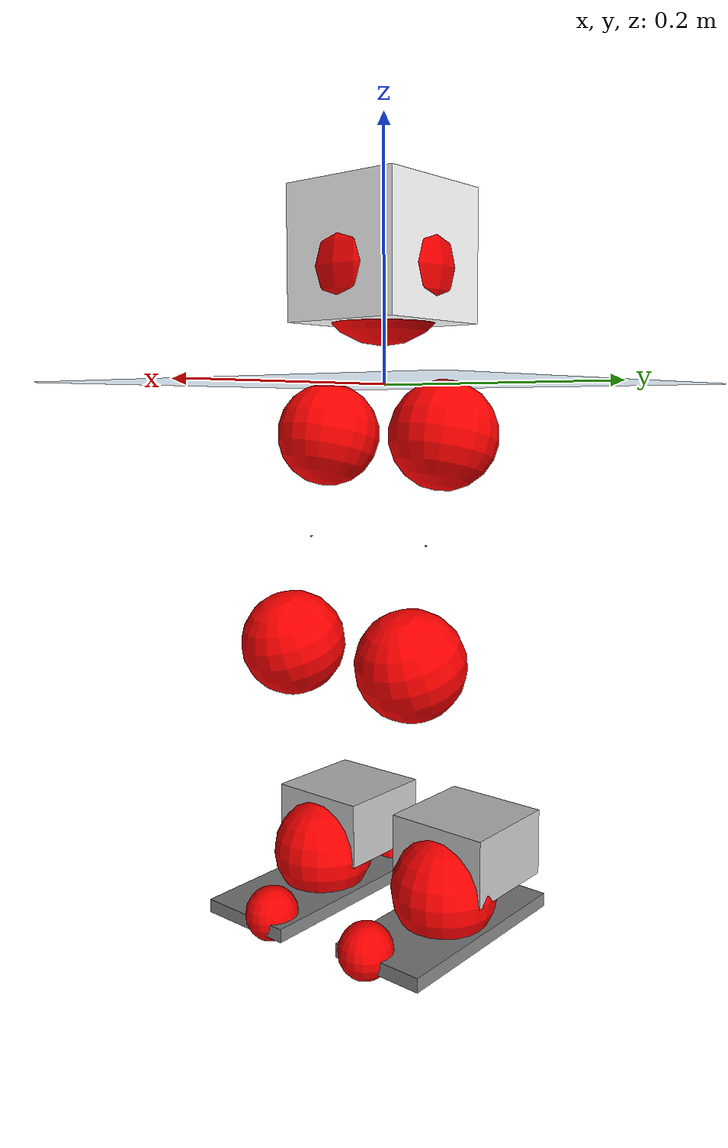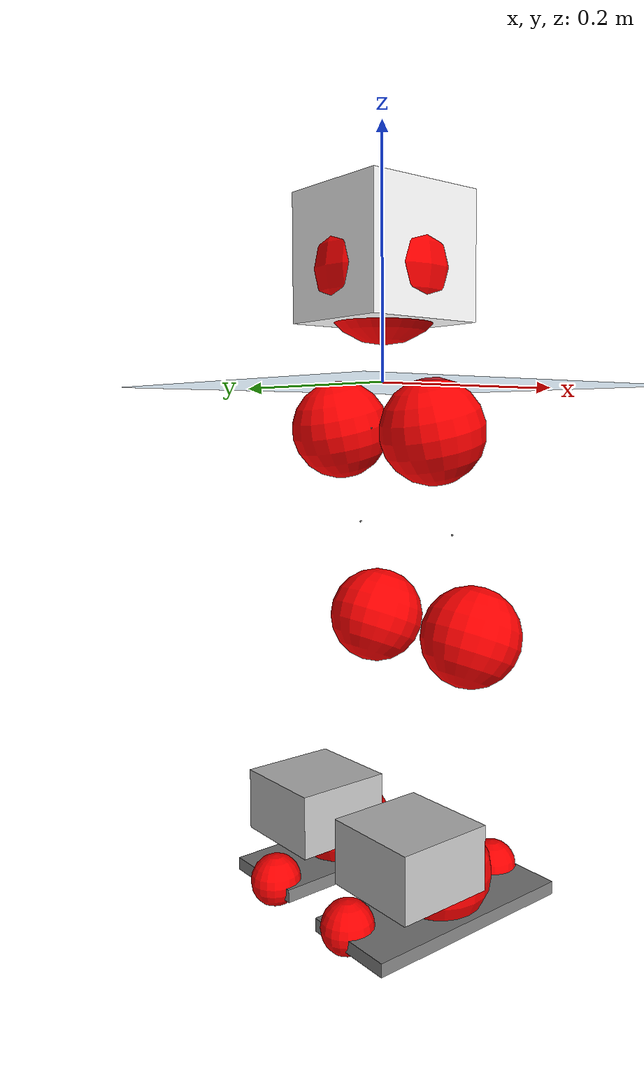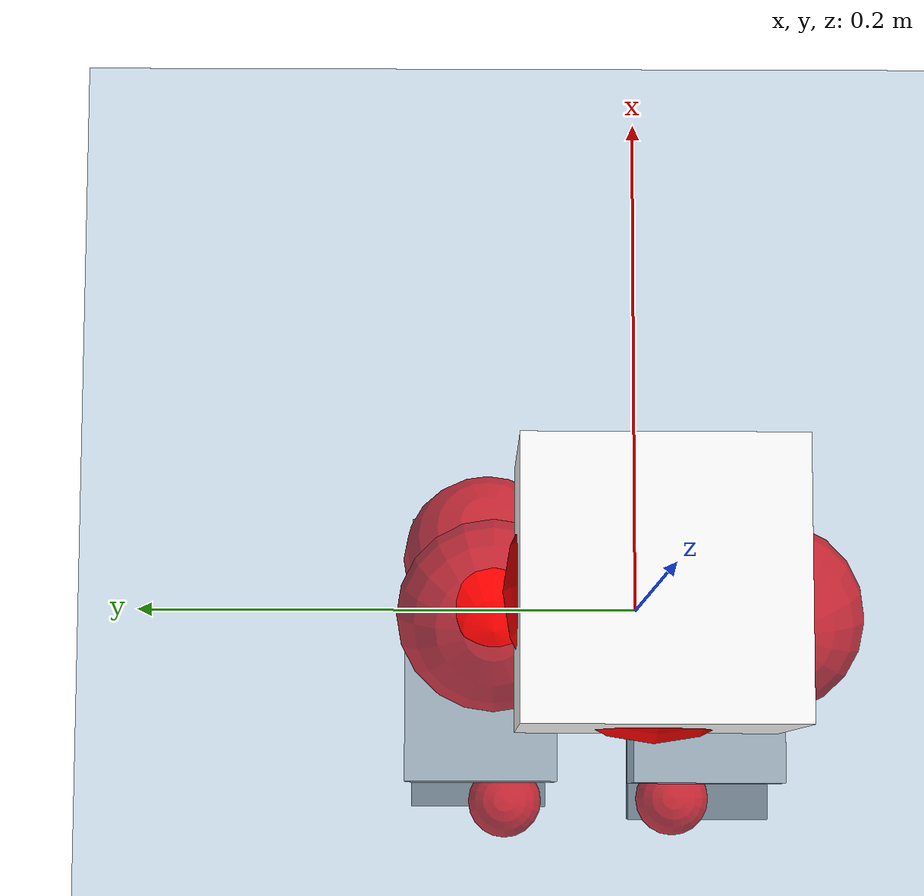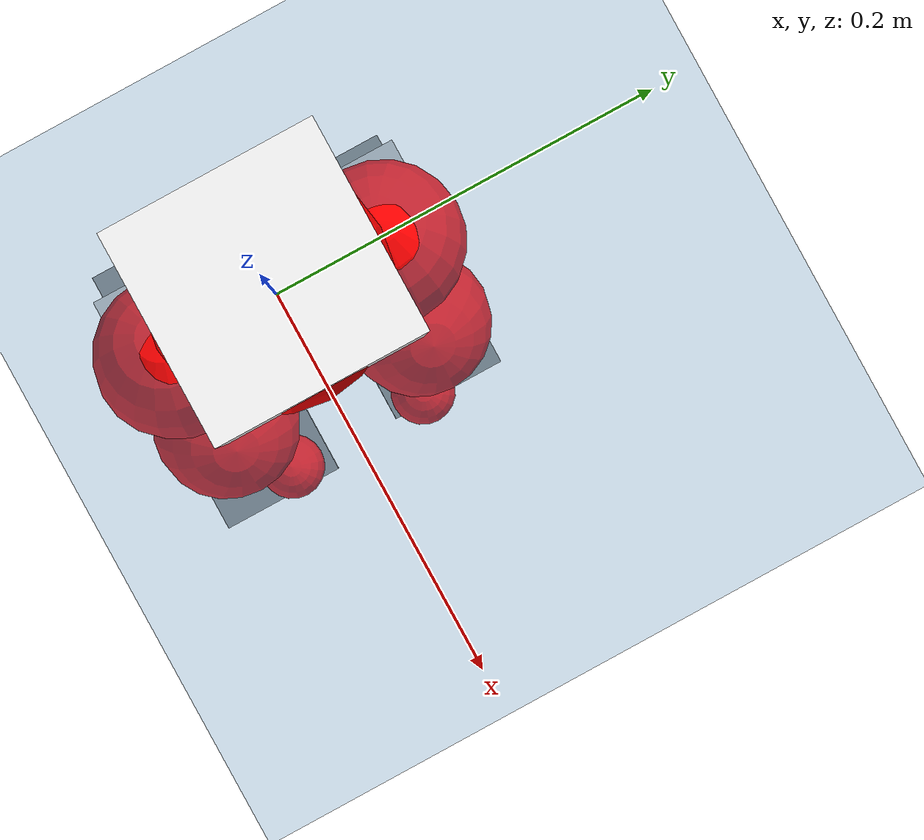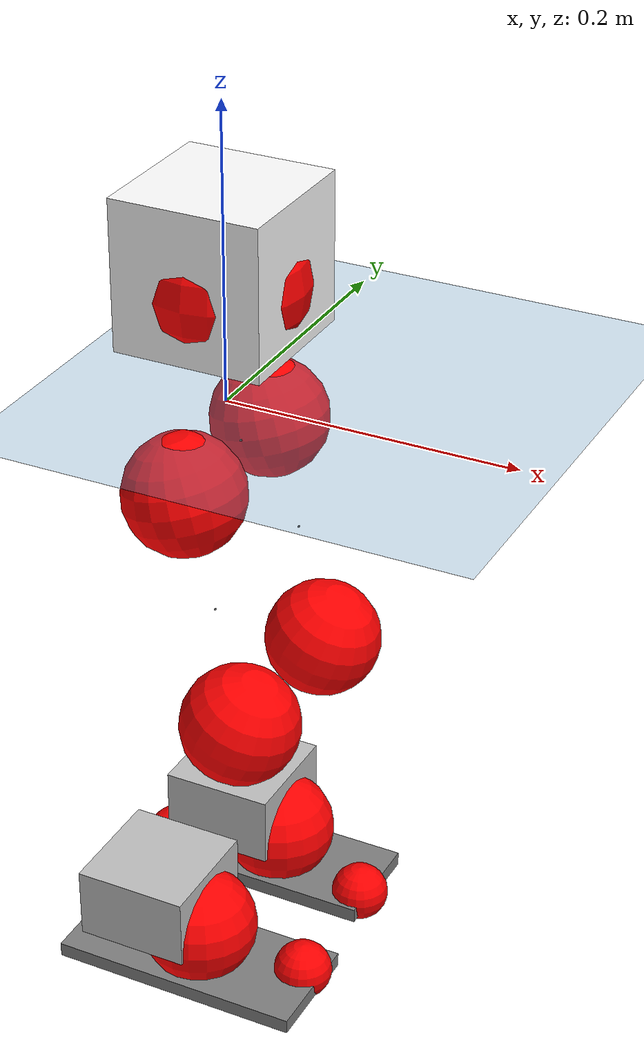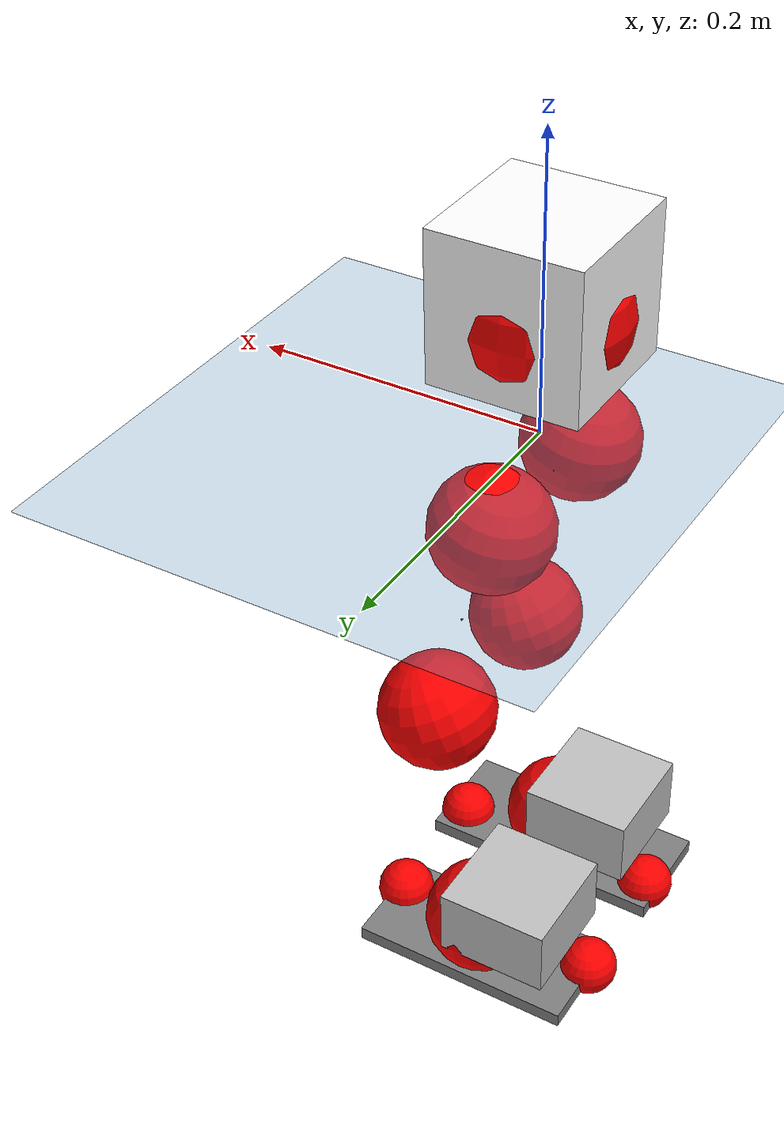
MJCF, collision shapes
<mujoco model="pi_12dof_release_v1">
  <compiler angle="radian" assetdir="assets" balanceinertia="true" inertiafromgeom="false"/>

  <option timestep="0.005" density="1.2" viscosity="2e-05"/>

  <size nkey="1"/>

  <visual>
    <quality shadowsize="8192"/>
    <map shadowclip="0.5"/>
  </visual>

  <default>
    <default class="/">
      <joint armature="0.01" damping="0.01" frictionloss="0.01"/>
      <geom contype="0" conaffinity="0" group="1" solref="-1000 -80"/>
      <site size="0.01 0.005 0.005" group="5"/>
      <general forcelimited="true" biastype="affine" gainprm="20" biasprm="0 -20 -0.5"/>
      <default class="foot">
        <geom size="0.0845 0.036 0.005" type="box" condim="6" group="4" priority="1" friction="0.9 0.2 0.2" solimp="0.015 1 0.005"/>
      </default>
      <default class="reward_collision_sphere">
        <geom group="5" rgba="1 0 0 1"/>
      </default>
    </default>
  </default>

  <asset>
    <texture type="skybox" colorspace="auto" name="//unnamed_texture_0" builtin="gradient" rgb1="0.95 0.95 0.95" rgb2="0.95 0.95 0.95" width="100" height="600"/>
    <texture type="2d" colorspace="auto" name="texplane" builtin="checker" rgb1="0.345 0.575 0.748" rgb2="0.345 0.575 0.748" markrgb="1 1 1" width="512" height="512"/>
    <material name="MatPlane" class="/" texture="texplane" texuniform="true" texrepeat="2 2" specular="0.9"/>
    <mesh name="baselink_1" class="/" file="baselink_1.STL"/>
    <mesh name="r_hip_pitch_link" class="/" file="r_hip_pitch_link.STL"/>
    <mesh name="r_hip_roll_link" class="/" file="r_hip_roll_link.STL"/>
    <mesh name="r_thigh_link" class="/" file="r_thigh_link.STL"/>
    <mesh name="r_calf_link" class="/" file="r_calf_link.STL"/>
    <mesh name="r_ankle_pitch_link" class="/" file="r_ankle_pitch_link.STL"/>
    <mesh name="r_ankle_roll_link" class="/" file="r_ankle_roll_link.STL"/>
    <mesh name="l_hip_pitch_link" class="/" file="l_hip_pitch_link.STL"/>
    <mesh name="l_hip_roll_link" class="/" file="l_hip_roll_link.STL"/>
    <mesh name="l_thigh_link" class="/" file="l_thigh_link.STL"/>
    <mesh name="l_calf_link" class="/" file="l_calf_link.STL"/>
    <mesh name="l_ankle_pitch_link" class="/" file="l_ankle_pitch_link.STL"/>
    <mesh name="l_ankle_roll_link" class="/" file="l_ankle_roll_link.STL"/>
  </asset>

  <worldbody>
    <geom name="floor" class="/" size="100 100 0.125" type="plane" group="0" material="MatPlane"/>
    <light name="toplight_shadow" class="/" pos="0 0 5" dir="0.0990148 0.0990148 -0.990148" type="directional" ambient="0.04 0.04 0.04" diffuse="0.55 0.55 0.55" specular="0.12 0.12 0.12"/>
    <light name="toplight_fill" class="/" pos="0 0 5" dir="0.0990148 0.0990148 -0.990148" type="directional" castshadow="false" ambient="0.04 0.04 0.04" diffuse="0.3 0.3 0.3" specular="0.08 0.08 0.08"/>
    <body name="trunk" pos="0.000173588 -0.000900032 0.00104849" quat="1 4.40137e-05 0.000438916 -0.000151494">
      <inertial pos="0.00248152 -0.0030158 0.0493972" quat="0.695289 0.00948444 0.0089145 0.718612" mass="2.19726" diaginertia="0.0160183 0.00173133 0.00982957"/>
      <joint name="//unnamed_joint_0" type="free"/>
      <geom name="//unnamed_geom_1" class="/" type="mesh" density="0" rgba="1 1 1 1" mesh="baselink_1"/>
      <geom name="//unnamed_geom_2" class="/" size="0.0505256 0.0505256 0.0505256" pos="0 0 0.0951984" type="box" rgba="1 1 1 1"/>
      <geom name="//unnamed_geom_3" class="reward_collision_sphere" size="0.0555782" pos="0 0 0.0832986"/>
      <site name="imu" class="/" pos="-0.00168884 0.00274336 0.00272642" size="0.0101051"/>
      <camera name="track" class="/" pos="0 -1.44705 0" quat="0.707107 0.707107 0 0" mode="trackcom"/>
      <camera name="ego_camera" class="/" pos="0.0838522 0 0.214196" quat="-0.5 -0.5 0.5 0.5"/>
      <body name="r_hip_pitch_link" pos="-0.00123631 -0.017098 -0.0395188" quat="0.992213 0.000312121 -0.124552 2.07169e-05">
        <inertial pos="0.00124187 -0.0428405 0.000755285" quat="-0.0172913 0.696942 -0.0309775 0.716249" mass="0.378812" diaginertia="0.000186527 1.93668e-05 0.000195119"/>
        <joint name="r_hip_pitch_joint" class="/" pos="0 0 0" axis="0.00214508 -0.999992 -0.00350877" range="-1.73456 1.25191" armature="0.00985404" damping="0.0254546" frictionloss="0.0113373"/>
        <geom name="//unnamed_geom_4" class="/" type="mesh" density="0" rgba="0.75294 0.75294 0.75294 1" mesh="r_hip_pitch_link"/>
        <geom name="//unnamed_geom_5" class="/" size="0.000505256 0.000505256 0.000505256" type="box" rgba="0.75294 0.75294 0.75294 1"/>
        <body name="r_hip_roll_link" pos="0.00179923 -0.0395775 -0.00029859" quat="0.999999 0.000180309 -0.000649982 -0.00109103">
          <inertial pos="-0.00188289 0.00202183 -0.0711762" quat="0.707044 -0.0755094 -0.0832022 0.698187" mass="0.398993" diaginertia="0.000565326 5.66666e-05 0.000305174"/>
          <joint name="r_hip_roll_joint" class="/" pos="0 0 0" axis="-1 0.000692704 -0.000100934" stiffness="0.000544188" range="-0.115924 0.499356" armature="0.0109987" damping="0.0187918" frictionloss="0.00991995"/>
          <geom name="//unnamed_geom_6" class="/" type="mesh" density="0" rgba="0.75294 0.75294 0.75294 1" mesh="r_hip_roll_link"/>
          <geom name="//unnamed_geom_7" class="/" size="0.000505256 0.000505256 0.000505256" type="box" rgba="0.75294 0.75294 0.75294 1"/>
          <geom name="//unnamed_geom_8" class="reward_collision_sphere" size="0.0404205"/>
          <body name="r_thigh_link" pos="6.56575e-05 -9.4364e-05 -0.0815673" quat="1 -1.38209e-05 -8.3081e-06 -1.78664e-07">
            <inertial pos="-0.00170194 -9.32875e-05 -0.0583847" quat="0.737568 0.675256 -0.00112118 -0.00458537" mass="0.113935" diaginertia="0.000216531 1.91782e-05 0.000136517"/>
            <joint name="r_thigh_joint" class="/" pos="0 0 0" axis="-0.00788131 -0.000303236 -0.999969" range="-0.352286 0.542901" armature="0.011133" damping="0" frictionloss="0.0113745"/>
            <geom name="//unnamed_geom_9" class="/" type="mesh" density="0" rgba="0.75294 0.75294 0.75294 1" mesh="r_thigh_link"/>
            <geom name="//unnamed_geom_10" class="/" size="0.000505256 0.000505256 0.000505256" type="box" rgba="0.75294 0.75294 0.75294 1"/>
            <body name="r_calf_link" pos="-0.00252489 -0.00280811 -0.0833772" quat="0.947755 0.000166585 0.318999 0.000106115">
              <inertial pos="0.000494074 -0.00156204 -0.0823929" quat="0.999962 0.00827556 -0.000136516 0.00283993" mass="0.848209" diaginertia="0.00605727 0.000693346 0.000411145"/>
              <joint name="r_calf_joint" class="/" pos="0 0 0" axis="0.0143223 -0.999897 0.000600738" stiffness="0.00148711" range="-1.6489 0.656562" armature="0.0101434" damping="0.0104109" frictionloss="0.0112951"/>
              <geom name="//unnamed_geom_11" class="/" type="mesh" density="0" rgba="0.75294 0.75294 0.75294 1" mesh="r_calf_link"/>
              <geom name="//unnamed_geom_12" class="/" size="0.000505256 0.000505256 0.000505256" type="box" rgba="0.75294 0.75294 0.75294 1"/>
              <geom name="//unnamed_geom_13" class="reward_collision_sphere" size="0.0404205"/>
              <body name="r_ankle_pitch_link" pos="0.00105271 -0.00166457 -0.168801" quat="0.98006 1.87456e-05 -0.198701 1.70346e-05">
                <inertial pos="0.00515005 0.00203721 0.00214862" quat="-0.000197145 0.706655 0.00186174 0.707556" mass="0.178633" diaginertia="0.000529866 4.38075e-05 0.000284796"/>
                <joint name="r_ankle_pitch_joint" class="/" pos="0 0 0" axis="0.00337782 -0.999982 0.00497643" range="-1.31686 0.452936" armature="0.0110283" damping="0.011981" frictionloss="0.0112366"/>
                <geom name="//unnamed_geom_14" class="/" type="mesh" density="0" rgba="0.75294 0.75294 0.75294 1" mesh="r_ankle_pitch_link"/>
                <geom name="//unnamed_geom_15" class="/" size="0.03941 0.0404205 0.0252628" type="box" rgba="0.75294 0.75294 0.75294 1"/>
                <body name="r_ankle_roll_link" pos="0.0867601 6.4041e-05 0.00235611" quat="1 -0.000351654 -7.60562e-06 7.05683e-05">
                  <inertial pos="-0.0273467 0.000917961 -0.01687" quat="0.559902 0.429017 0.432527 0.561582" mass="0.552683" diaginertia="0.00206224 0.000214161 0.000693776"/>
                  <joint name="r_ankle_roll_joint" class="/" pos="0 0 0" axis="-0.999927 0.00393939 -0.0114307" stiffness="0.00405304" range="-0.0986494 0.186811" armature="0.0098443" damping="0.0124333" frictionloss="0.00957763"/>
                  <geom name="//unnamed_geom_16" class="/" type="mesh" density="0" rgba="0.75294 0.75294 0.75294 1" mesh="r_ankle_roll_link"/>
                  <geom name="//unnamed_geom_17" class="/" type="mesh" rgba="0.75294 0.75294 0.75294 1" mesh="r_ankle_roll_link"/>
                  <geom name="right_foot" class="foot" size="0.0887476 0.038915 0.0050619" pos="-0.0570195 0 -0.0523591"/>
                  <geom name="//unnamed_geom_19" class="reward_collision_sphere" size="0.0404205" pos="-0.0559015 0 -0.0237996"/>
                  <geom name="//unnamed_geom_20" class="reward_collision_sphere" size="0.0202102" pos="0.0167704 0.0144705 -0.0475992"/>
                  <geom name="//unnamed_geom_21" class="reward_collision_sphere" size="0.0202102" pos="-0.134164 0.0144705 -0.0475992"/>
                  <site name="right_foot" class="foot" pos="-0.0570195 0 -0.0523591" size="0.0101051"/>
                </body>
              </body>
            </body>
          </body>
        </body>
      </body>
      <body name="l_hip_pitch_link" pos="0.00121203 0.0167432 -0.0368885" quat="0.992248 -0.000183179 -0.124274 -0.000106056">
        <inertial pos="0.000203865 0.0399846 0.000413416" quat="-0.0404415 0.706857 0.0331774 0.70542" mass="0.393043" diaginertia="0.0002284 2.11205e-05 0.000243467"/>
        <joint name="l_hip_pitch_joint" class="/" pos="0 0 0" axis="-0.00398209 0.999992 -0.000487242" stiffness="0.00581707" range="-1.24535 1.79563" armature="0.00972109" damping="0.0154573" frictionloss="0.0102755"/>
        <geom name="//unnamed_geom_22" class="/" type="mesh" density="0" rgba="0.75294 0.75294 0.75294 1" mesh="l_hip_pitch_link"/>
        <geom name="//unnamed_geom_23" class="/" size="0.000505256 0.000505256 0.000505256" type="box" rgba="0.75294 0.75294 0.75294 1"/>
        <body name="l_hip_roll_link" pos="-0.000662387 0.0408434 -0.00138354" quat="0.999999 -0.000676224 0.000950454 0.000406933">
          <inertial pos="-0.00312133 0.00253899 -0.0733918" quat="0.693985 -0.077098 -0.0768761 0.71171" mass="0.38856" diaginertia="0.000582178 5.52556e-05 0.000315524"/>
          <joint name="l_hip_roll_joint" class="/" pos="0 0 0" axis="-0.999995 0.000440604 -0.00324932" range="-0.502351 0.0999992" armature="0.0113969" damping="0.00804104" frictionloss="0.0100302"/>
          <geom name="//unnamed_geom_24" class="/" type="mesh" density="0" rgba="0.75294 0.75294 0.75294 1" mesh="l_hip_roll_link"/>
          <geom name="//unnamed_geom_25" class="/" size="0.000505256 0.000505256 0.000505256" type="box" rgba="0.75294 0.75294 0.75294 1"/>
          <geom name="//unnamed_geom_26" class="reward_collision_sphere" size="0.0404205"/>
          <body name="l_thigh_link" pos="0.00131267 0.000325229 -0.0814164" quat="1 4.73264e-07 -1.13099e-06 6.2943e-07">
            <inertial pos="0.000303504 0.000387001 -0.0561165" quat="0.673566 0.739126 -0.00088819 0.000872098" mass="0.117287" diaginertia="0.000213986 1.837e-05 0.000134777"/>
            <joint name="l_thigh_joint" class="/" pos="0 0 0" axis="-0.000241049 -0.00238771 -0.999997" range="-0.619742 0.282887" armature="0.0100343" damping="0" frictionloss="0.00958736"/>
            <geom name="//unnamed_geom_27" class="/" type="mesh" density="0" rgba="0.75294 0.75294 0.75294 1" mesh="l_thigh_link"/>
            <geom name="//unnamed_geom_28" class="/" size="0.000505256 0.000505256 0.000505256" type="box" rgba="0.75294 0.75294 0.75294 1"/>
            <body name="l_calf_link" pos="-0.0026481 0.00101828 -0.0852008" quat="0.947938 -0.000906652 0.318454 0.000270883">
              <inertial pos="0.000750437 0.00337381 -0.0816252" quat="0.999978 0.00463998 0.0002814 0.00464967" mass="0.841605" diaginertia="0.00616942 0.000686576 0.000431204"/>
              <joint name="l_calf_joint" class="/" pos="0 0 0" axis="-0.000907385 1 -0.000415588" range="-0.609146 1.67117" armature="0.0103715" damping="0.0057747" frictionloss="0.00957595"/>
              <geom name="//unnamed_geom_29" class="/" type="mesh" density="0" rgba="0.75294 0.75294 0.75294 1" mesh="l_calf_link"/>
              <geom name="//unnamed_geom_30" class="/" size="0.000505256 0.000505256 0.000505256" type="box" rgba="0.75294 0.75294 0.75294 1"/>
              <geom name="//unnamed_geom_31" class="reward_collision_sphere" size="0.0404205"/>
              <body name="l_ankle_pitch_link" pos="-0.000792578 0.00270799 -0.165474" quat="0.980008 -0.000147165 -0.198957 -0.000250986">
                <inertial pos="0.00501572 -0.00221879 0.000357222" quat="-0.0026808 0.706546 0.00297209 0.707656" mass="0.177153" diaginertia="0.000529846 4.40608e-05 0.000279835"/>
                <joint name="l_ankle_pitch_joint" class="/" pos="0 0 0" axis="0.00217787 0.999997 -0.00128462" stiffness="0.00975973" range="-0.49587 1.30155" armature="0.00903513" damping="0.0186021" frictionloss="0.00981697"/>
                <geom name="//unnamed_geom_32" class="/" type="mesh" density="0" rgba="0.75294 0.75294 0.75294 1" mesh="l_ankle_pitch_link"/>
                <geom name="//unnamed_geom_33" class="/" size="0.03941 0.0404205 0.0252628" type="box" rgba="0.75294 0.75294 0.75294 1"/>
                <body name="l_ankle_roll_link" pos="0.0849175 0.000954087 -0.000218049" quat="1 7.02979e-05 -0.000128634 7.29871e-05">
                  <inertial pos="-0.0277335 -0.000187511 -0.0177326" quat="0.559534 0.430431 0.434354 0.559453" mass="0.54247" diaginertia="0.00195563 0.000204227 0.000674331"/>
                  <joint name="l_ankle_roll_joint" class="/" pos="0 0 0" axis="-0.999999 0.000675885 0.00138794" range="-0.10235 0.14591" armature="0.0102363" damping="0" frictionloss="0.0105695"/>
                  <geom name="//unnamed_geom_34" class="/" type="mesh" density="0" rgba="0.75294 0.75294 0.75294 1" mesh="l_ankle_roll_link"/>
                  <geom name="//unnamed_geom_35" class="/" type="mesh" rgba="0.75294 0.75294 0.75294 1" mesh="l_ankle_roll_link"/>
                  <geom name="left_foot" class="foot" size="0.0803186 0.0371559 0.00515714" pos="-0.0570195 0 -0.0523591"/>
                  <geom name="//unnamed_geom_37" class="reward_collision_sphere" size="0.0404205" pos="-0.0559015 0 -0.0237996"/>
                  <geom name="//unnamed_geom_38" class="reward_collision_sphere" size="0.0202102" pos="0.0167704 -0.0144705 -0.0475992"/>
                  <geom name="//unnamed_geom_39" class="reward_collision_sphere" size="0.0202102" pos="-0.134164 -0.0144705 -0.0475992"/>
                  <site name="left_foot" class="foot" pos="-0.0570195 0 -0.0523591" size="0.0101051"/>
                </body>
              </body>
            </body>
          </body>
        </body>
      </body>
    </body>
  </worldbody>

  <contact>
    <pair class="/" geom1="floor" geom2="right_foot" name="//unnamed_contact_1"/>
    <pair class="/" geom1="floor" geom2="left_foot" name="//unnamed_contact_0"/>
  </contact>

  <actuator>
    <general name="r_hip_pitch_joint" class="/" joint="r_hip_pitch_joint" forcerange="-21.8196 21.8196" gainprm="20.4528" biasprm="0 -20.4528 -0.495799"/>
    <general name="r_hip_roll_joint" class="/" joint="r_hip_roll_joint" forcerange="-23.3085 23.3085" gainprm="20.4528" biasprm="0 -20.4528 -0.495799"/>
    <general name="r_thigh_joint" class="/" joint="r_thigh_joint" forcerange="-21.4051 21.4051" gainprm="20.4528" biasprm="0 -20.4528 -0.495799"/>
    <general name="r_calf_joint" class="/" joint="r_calf_joint" forcerange="-21.6091 21.6091" gainprm="20.4528" biasprm="0 -20.4528 -0.495799"/>
    <general name="r_ankle_pitch_joint" class="/" joint="r_ankle_pitch_joint" forcerange="-21.3213 21.3213" gainprm="20.4528" biasprm="0 -20.4528 -0.495799"/>
    <general name="r_ankle_roll_joint" class="/" joint="r_ankle_roll_joint" forcerange="-22.3972 22.3972" gainprm="20.4528" biasprm="0 -20.4528 -0.495799"/>
    <general name="l_hip_pitch_joint" class="/" joint="l_hip_pitch_joint" forcerange="-20.9413 20.9413" gainprm="20.4528" biasprm="0 -20.4528 -0.495799"/>
    <general name="l_hip_roll_joint" class="/" joint="l_hip_roll_joint" forcerange="-21.3377 21.3377" gainprm="20.4528" biasprm="0 -20.4528 -0.495799"/>
    <general name="l_thigh_joint" class="/" joint="l_thigh_joint" forcerange="-21.572 21.572" gainprm="20.4528" biasprm="0 -20.4528 -0.495799"/>
    <general name="l_calf_joint" class="/" joint="l_calf_joint" forcerange="-21.3571 21.3571" gainprm="20.4528" biasprm="0 -20.4528 -0.495799"/>
    <general name="l_ankle_pitch_joint" class="/" joint="l_ankle_pitch_joint" forcerange="-20.901 20.901" gainprm="20.4528" biasprm="0 -20.4528 -0.495799"/>
    <general name="l_ankle_roll_joint" class="/" joint="l_ankle_roll_joint" forcerange="-20.1214 20.1214" gainprm="20.4528" biasprm="0 -20.4528 -0.495799"/>
  </actuator>

  <sensor>
    <gyro site="imu" name="imu_angular_velocity"/>
    <velocimeter site="imu" name="imu_linear_velocity"/>
    <framelinvel objtype="site" objname="left_foot" name="left_foot_global_linear_velocity"/>
    <framelinvel objtype="site" objname="right_foot" name="right_foot_global_linear_velocity"/>
  </sensor>

  <keyframe>
    <key name="home" qpos="0 0 0.291 1 0 0 0 0.4 0 0 -0.8 0.4 0 -0.4 0 0 0.8 -0.4 0"/>
  </keyframe>
</mujoco>
